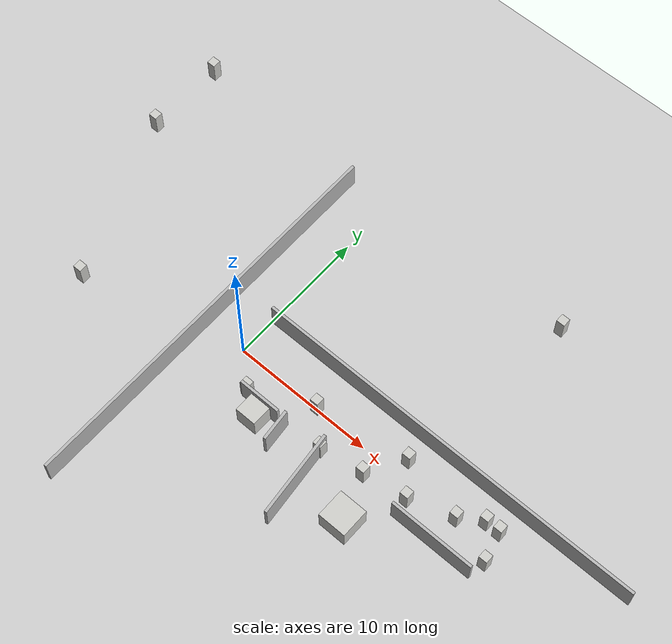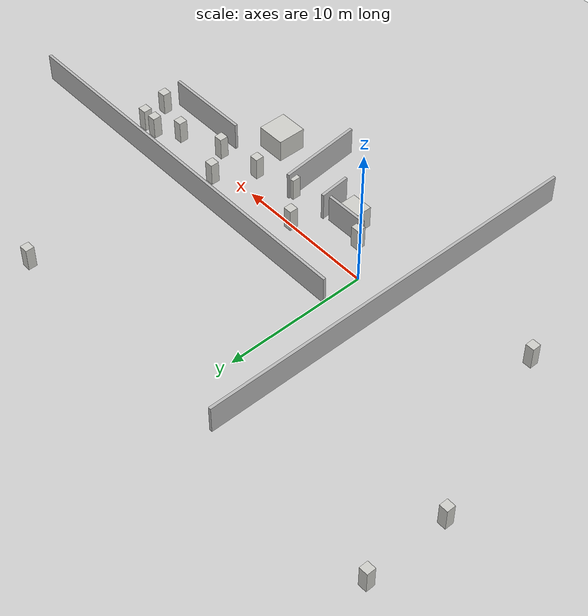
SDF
<sdf version="1.7">
 <world name="default">
  <light name="sun" type="directional">
   <pose>0 0 10 0 -0 0</pose>
   <diffuse>0.8 0.8 0.8 1</diffuse>
   <specular>0.2 0.2 0.2 1</specular>
   <attenuation>
    <range>1000</range>
    <constant>0.9</constant>
    <linear>0.01</linear>
    <quadratic>0.001</quadratic>
   </attenuation>
   <direction>-0.5 0.1 -0.9</direction>
   <spot><inner_angle>0</inner_angle><outer_angle>0</outer_angle><falloff>0</falloff></spot>
  </light>
  <model name="ground_plane">
   <static>1</static>
   <link name="link">
    <collision name="collision">
     <geometry><plane><normal>0 0 1</normal><size>100 100</size></plane></geometry>
     <surface>
      <contact><collide_bitmask>65535</collide_bitmask></contact>
      <friction><ode><mu>100</mu><mu2>50</mu2></ode></friction>
     </surface>
    </collision>
    <visual name="visual">
     <cast_shadows>0</cast_shadows>
     <geometry><plane><normal>0 0 1</normal><size>100 100</size></plane></geometry>
     <material>
      <script><uri>file://media/materials/scripts/gazebo.material</uri><name>Gazebo/Grey</name></script>
     </material>
    </visual>
   </link>
  </model>
  <gravity>0 0 -9.8</gravity>
  <magnetic_field>6e-06 2.3e-05 -4.2e-05</magnetic_field>
  <atmosphere type="adiabatic"/>
  <physics type="ode">
   <max_step_size>0.001</max_step_size>
   <real_time_factor>1</real_time_factor>
   <real_time_update_rate>1000</real_time_update_rate>
  </physics>
  <scene><ambient>0.4 0.4 0.4 1</ambient><background>0.7 0.7 0.7 1</background><shadows>1</shadows></scene>
  <spherical_coordinates>
   <surface_model>EARTH_WGS84</surface_model>
   <latitude_deg>0</latitude_deg>
   <longitude_deg>0</longitude_deg>
   <elevation>0</elevation>
   <heading_deg>0</heading_deg>
  </spherical_coordinates>
  <model name="left_wall">
   <static>true</static>
   <pose>14.0 2.8 1 0 0 0</pose>
   <link name="link">
    <collision name="collision"><geometry><box><size>28 0.2 2</size></box></geometry></collision>
    <visual name="visual"><geometry><box><size>28 0.2 2</size></box></geometry></visual>
   </link>
  </model>
  <model name="right_wall_1">
   <static>true</static>
   <pose>3.5 -2.2 1 0 0 0</pose>
   <link name="link">
    <collision name="collision"><geometry><box><size>3.0 0.2 2</size></box></geometry></collision>
    <visual name="visual"><geometry><box><size>3.0 0.2 2</size></box></geometry></visual>
   </link>
  </model>
  <model name="right_wall_2">
   <static>true</static>
   <pose>5.5 -3.0 1 0 0 0.1</pose>
   <link name="link">
    <collision name="collision"><geometry><box><size>0.2 2.2 2</size></box></geometry></collision>
    <visual name="visual"><geometry><box><size>0.2 2.2 2</size></box></geometry></visual>
   </link>
  </model>
  <model name="right_wall_3">
   <static>true</static>
   <pose>8.5 -4.5 1 0 0 0.1</pose>
   <link name="link">
    <collision name="collision"><geometry><box><size>0.2 6.0 2</size></box></geometry></collision>
    <visual name="visual"><geometry><box><size>0.2 6.0 2</size></box></geometry></visual>
   </link>
  </model>
  <model name="right_wall_4">
   <static>true</static>
   <pose>17.0 -2.1 1 0 0 0.0</pose>
   <link name="link">
    <collision name="collision"><geometry><box><size>6.0 0.2 2</size></box></geometry></collision>
    <visual name="visual"><geometry><box><size>6.0 0.2 2</size></box></geometry></visual>
   </link>
  </model>
  <model name="back_wall">
   <static>true</static>
   <pose>-3.0 0 1 0 0 0</pose>
   <link name="link">
    <collision name="collision"><geometry><box><size>0.2 28 2</size></box></geometry></collision>
    <visual name="visual"><geometry><box><size>0.2 28 2</size></box></geometry></visual>
   </link>
  </model>
  <model name="box_1_1_2">
   <pose>3.0 -0.5 0 0 -0 0.0</pose>
   <link name="Wall_0">
    <collision name="Wall_0_Collision">
     <geometry><box><size>0.6 0.6 1.6</size></box></geometry>
     <pose>0 0 0.8 0 -0 0</pose>
    </collision>
    <visual name="Wall_0_Visual">
     <pose>0 0 0.8 0 -0 0</pose>
     <geometry><box><size>0.6 0.6 1.6</size></box></geometry>
     <material>
      <script><uri>file://media/materials/scripts/gazebo.material</uri><name>Gazebo/CeilingTiled</name></script>
      <ambient>0.921569 0.807843 0.615686 1</ambient>
     </material>
     <meta><layer>0</layer></meta>
    </visual>
    <pose>-0.85 -1.44 0 0 -0 0</pose>
   </link>
   <static>1</static>
  </model>
  <model name="box_1_1_2_1">
   <pose>7.0 1.5 0 0 -0 0.0</pose>
   <link name="Wall_0">
    <collision name="Wall_0_Collision">
     <geometry><box><size>0.6 0.6 1.6</size></box></geometry>
     <pose>0 0 0.8 0 -0 0</pose>
    </collision>
    <visual name="Wall_0_Visual">
     <pose>0 0 0.8 0 -0 0</pose>
     <geometry><box><size>0.6 0.6 1.6</size></box></geometry>
     <material>
      <script><uri>file://media/materials/scripts/gazebo.material</uri><name>Gazebo/CeilingTiled</name></script>
      <ambient>0.921569 0.807843 0.615686 1</ambient>
     </material>
     <meta><layer>0</layer></meta>
    </visual>
    <pose>-0.85 -1.44 0 0 -0 0</pose>
   </link>
   <static>1</static>
  </model>
  <model name="box_1_1_2_2">
   <pose>9.0 -0.5 0 0 -0 0.0</pose>
   <link name="Wall_0">
    <collision name="Wall_0_Collision">
     <geometry><box><size>0.6 0.6 1.6</size></box></geometry>
     <pose>0 0 0.8 0 -0 0</pose>
    </collision>
    <visual name="Wall_0_Visual">
     <pose>0 0 0.8 0 -0 0</pose>
     <geometry><box><size>0.6 0.6 1.6</size></box></geometry>
     <material>
      <script><uri>file://media/materials/scripts/gazebo.material</uri><name>Gazebo/CeilingTiled</name></script>
      <ambient>0.921569 0.807843 0.615686 1</ambient>
     </material>
     <meta><layer>0</layer></meta>
    </visual>
    <pose>-0.85 -1.44 0 0 -0 0</pose>
   </link>
   <static>1</static>
  </model>
  <model name="box_1_1_2_3">
   <pose>12.0 0.0 0 0 -0 0.0</pose>
   <link name="Wall_0">
    <collision name="Wall_0_Collision">
     <geometry><box><size>0.6 0.6 1.6</size></box></geometry>
     <pose>0 0 0.8 0 -0 0</pose>
    </collision>
    <visual name="Wall_0_Visual">
     <pose>0 0 0.8 0 -0 0</pose>
     <geometry><box><size>0.6 0.6 1.6</size></box></geometry>
     <material>
      <script><uri>file://media/materials/scripts/gazebo.material</uri><name>Gazebo/CeilingTiled</name></script>
      <ambient>0.921569 0.807843 0.615686 1</ambient>
     </material>
     <meta><layer>0</layer></meta>
    </visual>
    <pose>-0.85 -1.44 0 0 -0 0</pose>
   </link>
   <static>1</static>
  </model>
  <model name="box_1_1_2_4">
   <pose>15.0 0.5 0 0 -0 0.0</pose>
   <link name="Wall_0">
    <collision name="Wall_0_Collision">
     <geometry><box><size>0.6 0.6 1.6</size></box></geometry>
     <pose>0 0 0.8 0 -0 0</pose>
    </collision>
    <visual name="Wall_0_Visual">
     <pose>0 0 0.8 0 -0 0</pose>
     <geometry><box><size>0.6 0.6 1.6</size></box></geometry>
     <material>
      <script><uri>file://media/materials/scripts/gazebo.material</uri><name>Gazebo/CeilingTiled</name></script>
      <ambient>0.921569 0.807843 0.615686 1</ambient>
     </material>
     <meta><layer>0</layer></meta>
    </visual>
    <pose>-0.85 -1.44 0 0 -0 0</pose>
   </link>
   <static>1</static>
  </model>
  <model name="box_1_1_2_5">
   <pose>18.0 1.5 0 0 -0 0.0</pose>
   <link name="Wall_0">
    <collision name="Wall_0_Collision">
     <geometry><box><size>0.6 0.6 1.6</size></box></geometry>
     <pose>0 0 0.8 0 -0 0</pose>
    </collision>
    <visual name="Wall_0_Visual">
     <pose>0 0 0.8 0 -0 0</pose>
     <geometry><box><size>0.6 0.6 1.6</size></box></geometry>
     <material>
      <script><uri>file://media/materials/scripts/gazebo.material</uri><name>Gazebo/CeilingTiled</name></script>
      <ambient>0.921569 0.807843 0.615686 1</ambient>
     </material>
     <meta><layer>0</layer></meta>
    </visual>
    <pose>-0.85 -1.44 0 0 -0 0</pose>
   </link>
   <static>1</static>
  </model>
  <model name="box_1_1_2_6">
   <pose>21.0 0.5 0 0 -0 0.0</pose>
   <link name="Wall_0">
    <collision name="Wall_0_Collision">
     <geometry><box><size>0.6 0.6 1.6</size></box></geometry>
     <pose>0 0 0.8 0 -0 0</pose>
    </collision>
    <visual name="Wall_0_Visual">
     <pose>0 0 0.8 0 -0 0</pose>
     <geometry><box><size>0.6 0.6 1.6</size></box></geometry>
     <material>
      <script><uri>file://media/materials/scripts/gazebo.material</uri><name>Gazebo/CeilingTiled</name></script>
      <ambient>0.921569 0.807843 0.615686 1</ambient>
     </material>
     <meta><layer>0</layer></meta>
    </visual>
    <pose>-0.85 -1.44 0 0 -0 0</pose>
   </link>
   <static>1</static>
  </model>
  <model name="box_1_1_2_7">
   <pose>13.0 -3.0 0 0 -0 0.0</pose>
   <link name="Wall_0">
    <collision name="Wall_0_Collision">
     <geometry><box><size>2.0 2.0 1.6</size></box></geometry>
     <pose>0 0 0.8 0 -0 0</pose>
    </collision>
    <visual name="Wall_0_Visual">
     <pose>0 0 0.8 0 -0 0</pose>
     <geometry><box><size>2.0 2.0 1.6</size></box></geometry>
     <material>
      <script><uri>file://media/materials/scripts/gazebo.material</uri><name>Gazebo/CeilingTiled</name></script>
      <ambient>0.921569 0.807843 0.615686 1</ambient>
     </material>
     <meta><layer>0</layer></meta>
    </visual>
    <pose>-0.85 -1.44 0 0 -0 0</pose>
   </link>
   <static>1</static>
  </model>
  <model name="box_1_1_2_8">
   <pose>13.5 2.5 0 0 -0 0</pose>
   <link name="Wall_0">
    <collision name="Wall_0_Collision">
     <geometry><box><size>0.6 0.6 1.6</size></box></geometry>
     <pose>0 0 0.8 0 -0 0</pose>
    </collision>
    <visual name="Wall_0_Visual">
     <pose>0 0 0.8 0 -0 0</pose>
     <geometry><box><size>0.6 0.6 1.6</size></box></geometry>
     <material>
      <script><uri>file://media/materials/scripts/gazebo.material</uri><name>Gazebo/CeilingTiled</name></script>
      <ambient>0.921569 0.807843 0.615686 1</ambient>
     </material>
     <meta><layer>0</layer></meta>
    </visual>
    <pose>-0.85 -1.44 0 0 -0 0</pose>
   </link>
   <static>1</static>
  </model>
  <model name="box_1_1_2_9">
   <pose>19.5 2.5 0 0 -0 0</pose>
   <link name="Wall_0">
    <collision name="Wall_0_Collision">
     <geometry><box><size>0.6 0.6 1.6</size></box></geometry>
     <pose>0 0 0.8 0 -0 0</pose>
    </collision>
    <visual name="Wall_0_Visual">
     <pose>0 0 0.8 0 -0 0</pose>
     <geometry><box><size>0.6 0.6 1.6</size></box></geometry>
     <material>
      <script><uri>file://media/materials/scripts/gazebo.material</uri><name>Gazebo/CeilingTiled</name></script>
      <ambient>0.921569 0.807843 0.615686 1</ambient>
     </material>
     <meta><layer>0</layer></meta>
    </visual>
    <pose>-0.85 -1.44 0 0 -0 0</pose>
   </link>
   <static>1</static>
  </model>
  <model name="box_1_1_2_10">
   <pose>20.5 2.5 0 0 -0 0</pose>
   <link name="Wall_0">
    <collision name="Wall_0_Collision">
     <geometry><box><size>0.6 0.6 1.6</size></box></geometry>
     <pose>0 0 0.8 0 -0 0</pose>
    </collision>
    <visual name="Wall_0_Visual">
     <pose>0 0 0.8 0 -0 0</pose>
     <geometry><box><size>0.6 0.6 1.6</size></box></geometry>
     <material>
      <script><uri>file://media/materials/scripts/gazebo.material</uri><name>Gazebo/CeilingTiled</name></script>
      <ambient>0.921569 0.807843 0.615686 1</ambient>
     </material>
     <meta><layer>0</layer></meta>
    </visual>
    <pose>-0.85 -1.44 0 0 -0 0</pose>
   </link>
   <static>1</static>
  </model>
  <model name="box_1_1_2_11">
   <pose>4.5 -1.5 0 0 -0 0</pose>
   <link name="Wall_0">
    <collision name="Wall_0_Collision">
     <geometry><box><size>1.5 1.5 1.6</size></box></geometry>
     <pose>0 0 0.8 0 -0 0</pose>
    </collision>
    <visual name="Wall_0_Visual">
     <pose>0 0 0.8 0 -0 0</pose>
     <geometry><box><size>1.5 1.5 1.6</size></box></geometry>
     <material>
      <script><uri>file://media/materials/scripts/gazebo.material</uri><name>Gazebo/CeilingTiled</name></script>
      <ambient>0.921569 0.807843 0.615686 1</ambient>
     </material>
     <meta><layer>0</layer></meta>
    </visual>
    <pose>-0.85 -1.44 0 0 -0 0</pose>
   </link>
   <static>1</static>
  </model>
  <model name="box_1_1_2_12">
   <pose>-10.5 -1.5 0 0 -0 0</pose>
   <link name="Wall_0">
    <collision name="Wall_0_Collision">
     <geometry><box><size>0.6 0.6 1.6</size></box></geometry>
     <pose>0 0 0.8 0 -0 0</pose>
    </collision>
    <visual name="Wall_0_Visual">
     <pose>0 0 0.8 0 -0 0</pose>
     <geometry><box><size>0.6 0.6 1.6</size></box></geometry>
     <material>
      <script><uri>file://media/materials/scripts/gazebo.material</uri><name>Gazebo/CeilingTiled</name></script>
      <ambient>0.921569 0.807843 0.615686 1</ambient>
     </material>
     <meta><layer>0</layer></meta>
    </visual>
    <pose>-0.85 -1.44 0 0 -0 0</pose>
   </link>
   <static>1</static>
  </model>
  <model name="box_1_1_2_13">
   <pose>-15.0 10.0 0 0 -0 0</pose>
   <link name="Wall_0">
    <collision name="Wall_0_Collision">
     <geometry><box><size>0.6 0.6 1.6</size></box></geometry>
     <pose>0 0 0.8 0 -0 0</pose>
    </collision>
    <visual name="Wall_0_Visual">
     <pose>0 0 0.8 0 -0 0</pose>
     <geometry><box><size>0.6 0.6 1.6</size></box></geometry>
     <material>
      <script><uri>file://media/materials/scripts/gazebo.material</uri><name>Gazebo/CeilingTiled</name></script>
      <ambient>0.921569 0.807843 0.615686 1</ambient>
     </material>
     <meta><layer>0</layer></meta>
    </visual>
    <pose>-0.85 -1.44 0 0 -0 0</pose>
   </link>
   <static>1</static>
  </model>
  <model name="box_1_1_2_14">
   <pose>-15.0 15.7 0 0 -0 0</pose>
   <link name="Wall_0">
    <collision name="Wall_0_Collision">
     <geometry><box><size>0.6 0.6 1.6</size></box></geometry>
     <pose>0 0 0.8 0 -0 0</pose>
    </collision>
    <visual name="Wall_0_Visual">
     <pose>0 0 0.8 0 -0 0</pose>
     <geometry><box><size>0.6 0.6 1.6</size></box></geometry>
     <material>
      <script><uri>file://media/materials/scripts/gazebo.material</uri><name>Gazebo/CeilingTiled</name></script>
      <ambient>0.921569 0.807843 0.615686 1</ambient>
     </material>
     <meta><layer>0</layer></meta>
    </visual>
    <pose>-0.85 -1.44 0 0 -0 0</pose>
   </link>
   <static>1</static>
  </model>
  <model name="box_1_1_2_15">
   <pose>15.0 15.7 0 0 -0 0</pose>
   <link name="Wall_0">
    <collision name="Wall_0_Collision">
     <geometry><box><size>0.6 0.6 1.6</size></box></geometry>
     <pose>0 0 0.8 0 -0 0</pose>
    </collision>
    <visual name="Wall_0_Visual">
     <pose>0 0 0.8 0 -0 0</pose>
     <geometry><box><size>0.6 0.6 1.6</size></box></geometry>
     <material>
      <script><uri>file://media/materials/scripts/gazebo.material</uri><name>Gazebo/CeilingTiled</name></script>
      <ambient>0.921569 0.807843 0.615686 1</ambient>
     </material>
     <meta><layer>0</layer></meta>
    </visual>
    <pose>-0.85 -1.44 0 0 -0 0</pose>
   </link>
   <static>1</static>
  </model>
 </world>
</sdf>
